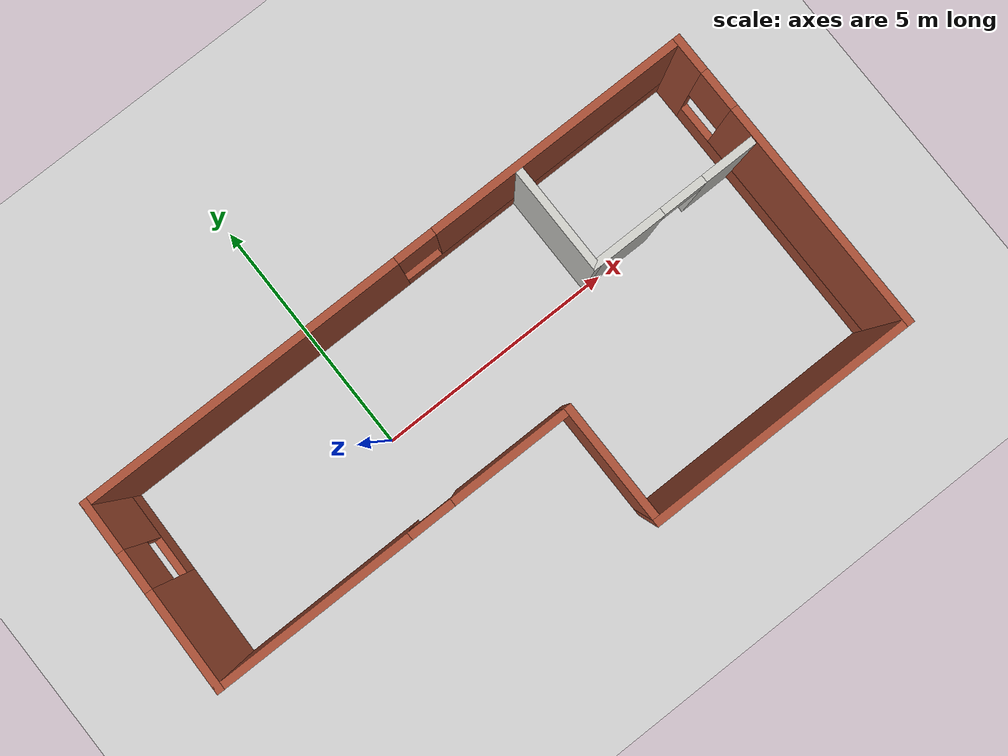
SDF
<sdf version='1.7'>
  <world name='default'>
    <light name='sun' type='directional'>
      <cast_shadows>1</cast_shadows>
      <pose>0 0 10 0 -0 0</pose>
      <diffuse>0.8 0.8 0.8 1</diffuse>
      <specular>0.2 0.2 0.2 1</specular>
      <attenuation>
        <range>1000</range>
        <constant>0.9</constant>
        <linear>0.01</linear>
        <quadratic>0.001</quadratic>
      </attenuation>
      <direction>-0.5 0.1 -0.9</direction>
      <spot>
        <inner_angle>0</inner_angle>
        <outer_angle>0</outer_angle>
        <falloff>0</falloff>
      </spot>
    </light>
    <model name='ground_plane'>
      <static>1</static>
      <link name='link'>
        <collision name='collision'>
          <geometry>
            <plane>
              <normal>0 0 1</normal>
              <size>100 100</size>
            </plane>
          </geometry>
          <surface>
            <contact>
              <collide_bitmask>65535</collide_bitmask>
              <ode/>
            </contact>
            <friction>
              <ode>
                <mu>100</mu>
                <mu2>50</mu2>
              </ode>
              <torsional>
                <ode/>
              </torsional>
            </friction>
            <bounce/>
          </surface>
          <max_contacts>10</max_contacts>
        </collision>
        <visual name='visual'>
          <cast_shadows>0</cast_shadows>
          <geometry>
            <plane>
              <normal>0 0 1</normal>
              <size>100 100</size>
            </plane>
          </geometry>
          <material>
            <script>
              <uri>file://media/materials/scripts/gazebo.material</uri>
              <name>Gazebo/Grey</name>
            </script>
          </material>
        </visual>
        <self_collide>0</self_collide>
        <enable_wind>0</enable_wind>
        <kinematic>0</kinematic>
      </link>
    </model>
    <gravity>0 0 -9.8</gravity>
    <magnetic_field>6e-06 2.3e-05 -4.2e-05</magnetic_field>
    <atmosphere type='adiabatic'/>
    <physics type='ode'>
      <max_step_size>0.001</max_step_size>
      <real_time_factor>1</real_time_factor>
      <real_time_update_rate>1000</real_time_update_rate>
    </physics>
    <scene>
      <ambient>0.4 0.4 0.4 1</ambient>
      <background>0.7 0.7 0.7 1</background>
      <shadows>0</shadows>
    </scene>
    <wind/>
    <spherical_coordinates>
      <surface_model>EARTH_WGS84</surface_model>
      <latitude_deg>0</latitude_deg>
      <longitude_deg>0</longitude_deg>
      <elevation>0</elevation>
      <heading_deg>0</heading_deg>
    </spherical_coordinates>
    <model name='world'>
      <pose>1.84735 -0.85774 0 0 -0 0</pose>
      <link name='Wall_10'>
        <pose>4.51631 0.925883 0 0 -0 0</pose>
        <visual name='Wall_10_Visual_0'>
          <pose>-0.989145 0 1.25 0 -0 0</pose>
          <geometry>
            <box>
              <size>1.52171 0.15 2.5</size>
            </box>
          </geometry>
          <material>
            <script>
              <uri>file://media/materials/scripts/gazebo.material</uri>
              <name>Gazebo/CeilingTiled</name>
            </script>
            <ambient>1 1 1 1</ambient>
          </material>
          <meta>
            <layer>0</layer>
          </meta>
        </visual>
        <collision name='Wall_10_Collision_0'>
          <geometry>
            <box>
              <size>1.52171 0.15 2.5</size>
            </box>
          </geometry>
          <pose>-0.989145 0 1.25 0 -0 0</pose>
          <max_contacts>10</max_contacts>
          <surface>
            <contact>
              <ode/>
            </contact>
            <bounce/>
            <friction>
              <torsional>
                <ode/>
              </torsional>
              <ode/>
            </friction>
          </surface>
        </collision>
        <visual name='Wall_10_Visual_1'>
          <pose>1.21086 0 1.25 0 -0 0</pose>
          <geometry>
            <box>
              <size>1.07829 0.15 2.5</size>
            </box>
          </geometry>
          <material>
            <script>
              <uri>file://media/materials/scripts/gazebo.material</uri>
              <name>Gazebo/CeilingTiled</name>
            </script>
            <ambient>1 1 1 1</ambient>
          </material>
          <meta>
            <layer>0</layer>
          </meta>
        </visual>
        <collision name='Wall_10_Collision_1'>
          <geometry>
            <box>
              <size>1.07829 0.15 2.5</size>
            </box>
          </geometry>
          <pose>1.21086 0 1.25 0 -0 0</pose>
          <max_contacts>10</max_contacts>
          <surface>
            <contact>
              <ode/>
            </contact>
            <bounce/>
            <friction>
              <torsional>
                <ode/>
              </torsional>
              <ode/>
            </friction>
          </surface>
        </collision>
        <visual name='Wall_10_Visual_2'>
          <pose>0.22171 0 2.25 0 -0 0</pose>
          <geometry>
            <box>
              <size>0.9 0.15 0.5</size>
            </box>
          </geometry>
          <material>
            <script>
              <uri>file://media/materials/scripts/gazebo.material</uri>
              <name>Gazebo/CeilingTiled</name>
            </script>
            <ambient>1 1 1 1</ambient>
          </material>
          <meta>
            <layer>0</layer>
          </meta>
        </visual>
        <collision name='Wall_10_Collision_2'>
          <geometry>
            <box>
              <size>0.9 0.15 0.5</size>
            </box>
          </geometry>
          <pose>0.22171 0 2.25 0 -0 0</pose>
          <max_contacts>10</max_contacts>
          <surface>
            <contact>
              <ode/>
            </contact>
            <bounce/>
            <friction>
              <torsional>
                <ode/>
              </torsional>
              <ode/>
            </friction>
          </surface>
        </collision>
        <self_collide>0</self_collide>
        <enable_wind>0</enable_wind>
        <kinematic>0</kinematic>
      </link>
      <link name='Wall_2'>
        <pose>0.050987 3.04901 0 0 -0 0</pose>
        <visual name='Wall_2_Visual_0'>
          <pose>-3.07947 0 1.25 0 -0 0</pose>
          <geometry>
            <box>
              <size>6.59105 0.15 2.5</size>
            </box>
          </geometry>
          <material>
            <script>
              <uri>file://media/materials/scripts/gazebo.material</uri>
              <name>Gazebo/Bricks</name>
            </script>
            <ambient>1 1 1 1</ambient>
          </material>
          <meta>
            <layer>0</layer>
          </meta>
        </visual>
        <collision name='Wall_2_Collision_0'>
          <geometry>
            <box>
              <size>6.59105 0.15 2.5</size>
            </box>
          </geometry>
          <pose>-3.07947 0 1.25 0 -0 0</pose>
          <max_contacts>10</max_contacts>
          <surface>
            <contact>
              <ode/>
            </contact>
            <bounce/>
            <friction>
              <torsional>
                <ode/>
              </torsional>
              <ode/>
            </friction>
          </surface>
        </collision>
        <visual name='Wall_2_Visual_1'>
          <pose>3.29553 0 0.25 0 -0 0</pose>
          <geometry>
            <box>
              <size>6.15895 0.15 0.5</size>
            </box>
          </geometry>
          <material>
            <script>
              <uri>file://media/materials/scripts/gazebo.material</uri>
              <name>Gazebo/Bricks</name>
            </script>
            <ambient>1 1 1 1</ambient>
          </material>
          <meta>
            <layer>0</layer>
          </meta>
        </visual>
        <collision name='Wall_2_Collision_1'>
          <geometry>
            <box>
              <size>6.15895 0.15 0.5</size>
            </box>
          </geometry>
          <pose>3.29553 0 0.25 0 -0 0</pose>
          <max_contacts>10</max_contacts>
          <surface>
            <contact>
              <ode/>
            </contact>
            <bounce/>
            <friction>
              <torsional>
                <ode/>
              </torsional>
              <ode/>
            </friction>
          </surface>
        </collision>
        <visual name='Wall_2_Visual_2'>
          <pose>3.69553 0 1.5 0 -0 0</pose>
          <geometry>
            <box>
              <size>5.35895 0.15 2</size>
            </box>
          </geometry>
          <material>
            <script>
              <uri>file://media/materials/scripts/gazebo.material</uri>
              <name>Gazebo/Bricks</name>
            </script>
            <ambient>1 1 1 1</ambient>
          </material>
          <meta>
            <layer>0</layer>
          </meta>
        </visual>
        <collision name='Wall_2_Collision_2'>
          <geometry>
            <box>
              <size>5.35895 0.15 2</size>
            </box>
          </geometry>
          <pose>3.69553 0 1.5 0 -0 0</pose>
          <max_contacts>10</max_contacts>
          <surface>
            <contact>
              <ode/>
            </contact>
            <bounce/>
            <friction>
              <torsional>
                <ode/>
              </torsional>
              <ode/>
            </friction>
          </surface>
        </collision>
        <visual name='Wall_2_Visual_3'>
          <pose>0.616052 0 1.9 0 -0 0</pose>
          <geometry>
            <box>
              <size>0.8 0.15 1.2</size>
            </box>
          </geometry>
          <material>
            <script>
              <uri>file://media/materials/scripts/gazebo.material</uri>
              <name>Gazebo/Bricks</name>
            </script>
            <ambient>1 1 1 1</ambient>
          </material>
          <meta>
            <layer>0</layer>
          </meta>
        </visual>
        <collision name='Wall_2_Collision_3'>
          <geometry>
            <box>
              <size>0.8 0.15 1.2</size>
            </box>
          </geometry>
          <pose>0.616052 0 1.9 0 -0 0</pose>
          <max_contacts>10</max_contacts>
          <surface>
            <contact>
              <ode/>
            </contact>
            <bounce/>
            <friction>
              <torsional>
                <ode/>
              </torsional>
              <ode/>
            </friction>
          </surface>
        </collision>
        <self_collide>0</self_collide>
        <enable_wind>0</enable_wind>
        <kinematic>0</kinematic>
      </link>
      <link name='Wall_3'>
        <pose>6.35099 -0.000986 0 0 -0 -1.5708</pose>
        <visual name='Wall_3_Visual_0'>
          <pose>-2.74393 0 1.25 0 -0 0</pose>
          <geometry>
            <box>
              <size>0.762139 0.15 2.5</size>
            </box>
          </geometry>
          <material>
            <script>
              <uri>file://media/materials/scripts/gazebo.material</uri>
              <name>Gazebo/Bricks</name>
            </script>
            <ambient>1 1 1 1</ambient>
          </material>
          <meta>
            <layer>0</layer>
          </meta>
        </visual>
        <collision name='Wall_3_Collision_0'>
          <geometry>
            <box>
              <size>0.762139 0.15 2.5</size>
            </box>
          </geometry>
          <pose>-2.74393 0 1.25 0 -0 0</pose>
          <max_contacts>10</max_contacts>
          <surface>
            <contact>
              <ode/>
            </contact>
            <bounce/>
            <friction>
              <torsional>
                <ode/>
              </torsional>
              <ode/>
            </friction>
          </surface>
        </collision>
        <visual name='Wall_3_Visual_1'>
          <pose>0.381069 0 0.25 0 -0 0</pose>
          <geometry>
            <box>
              <size>5.48786 0.15 0.5</size>
            </box>
          </geometry>
          <material>
            <script>
              <uri>file://media/materials/scripts/gazebo.material</uri>
              <name>Gazebo/Bricks</name>
            </script>
            <ambient>1 1 1 1</ambient>
          </material>
          <meta>
            <layer>0</layer>
          </meta>
        </visual>
        <collision name='Wall_3_Collision_1'>
          <geometry>
            <box>
              <size>5.48786 0.15 0.5</size>
            </box>
          </geometry>
          <pose>0.381069 0 0.25 0 -0 0</pose>
          <max_contacts>10</max_contacts>
          <surface>
            <contact>
              <ode/>
            </contact>
            <bounce/>
            <friction>
              <torsional>
                <ode/>
              </torsional>
              <ode/>
            </friction>
          </surface>
        </collision>
        <visual name='Wall_3_Visual_2'>
          <pose>0.781069 0 1.5 0 -0 0</pose>
          <geometry>
            <box>
              <size>4.68786 0.15 2</size>
            </box>
          </geometry>
          <material>
            <script>
              <uri>file://media/materials/scripts/gazebo.material</uri>
              <name>Gazebo/Bricks</name>
            </script>
            <ambient>1 1 1 1</ambient>
          </material>
          <meta>
            <layer>0</layer>
          </meta>
        </visual>
        <collision name='Wall_3_Collision_2'>
          <geometry>
            <box>
              <size>4.68786 0.15 2</size>
            </box>
          </geometry>
          <pose>0.781069 0 1.5 0 -0 0</pose>
          <max_contacts>10</max_contacts>
          <surface>
            <contact>
              <ode/>
            </contact>
            <bounce/>
            <friction>
              <torsional>
                <ode/>
              </torsional>
              <ode/>
            </friction>
          </surface>
        </collision>
        <visual name='Wall_3_Visual_3'>
          <pose>-1.96286 0 1.9 0 -0 0</pose>
          <geometry>
            <box>
              <size>0.8 0.15 1.2</size>
            </box>
          </geometry>
          <material>
            <script>
              <uri>file://media/materials/scripts/gazebo.material</uri>
              <name>Gazebo/Bricks</name>
            </script>
            <ambient>1 1 1 1</ambient>
          </material>
          <meta>
            <layer>0</layer>
          </meta>
        </visual>
        <collision name='Wall_3_Collision_3'>
          <geometry>
            <box>
              <size>0.8 0.15 1.2</size>
            </box>
          </geometry>
          <pose>-1.96286 0 1.9 0 -0 0</pose>
          <max_contacts>10</max_contacts>
          <surface>
            <contact>
              <ode/>
            </contact>
            <bounce/>
            <friction>
              <torsional>
                <ode/>
              </torsional>
              <ode/>
            </friction>
          </surface>
        </collision>
        <self_collide>0</self_collide>
        <enable_wind>0</enable_wind>
        <kinematic>0</kinematic>
      </link>
      <link name='Wall_4'>
        <collision name='Wall_4_Collision'>
          <geometry>
            <box>
              <size>5.5 0.15 2.5</size>
            </box>
          </geometry>
          <pose>0 0 1.25 0 -0 0</pose>
          <max_contacts>10</max_contacts>
          <surface>
            <contact>
              <ode/>
            </contact>
            <bounce/>
            <friction>
              <torsional>
                <ode/>
              </torsional>
              <ode/>
            </friction>
          </surface>
        </collision>
        <visual name='Wall_4_Visual'>
          <pose>0 0 1.25 0 -0 0</pose>
          <geometry>
            <box>
              <size>5.5 0.15 2.5</size>
            </box>
          </geometry>
          <material>
            <script>
              <uri>file://media/materials/scripts/gazebo.material</uri>
              <name>Gazebo/Bricks</name>
            </script>
            <ambient>1 1 1 1</ambient>
          </material>
          <meta>
            <layer>0</layer>
          </meta>
        </visual>
        <pose>3.67599 -3.05099 0 0 -0 3.14159</pose>
        <self_collide>0</self_collide>
        <enable_wind>0</enable_wind>
        <kinematic>0</kinematic>
      </link>
      <link name='Wall_5'>
        <collision name='Wall_5_Collision'>
          <geometry>
            <box>
              <size>2.5 0.15 2.5</size>
            </box>
          </geometry>
          <pose>0 0 1.25 0 -0 0</pose>
          <max_contacts>10</max_contacts>
          <surface>
            <contact>
              <ode/>
            </contact>
            <bounce/>
            <friction>
              <torsional>
                <ode/>
              </torsional>
              <ode/>
            </friction>
          </surface>
        </collision>
        <visual name='Wall_5_Visual'>
          <pose>0 0 1.25 0 -0 0</pose>
          <geometry>
            <box>
              <size>2.5 0.15 2.5</size>
            </box>
          </geometry>
          <material>
            <script>
              <uri>file://media/materials/scripts/gazebo.material</uri>
              <name>Gazebo/Bricks</name>
            </script>
            <ambient>1 1 1 1</ambient>
          </material>
          <meta>
            <layer>0</layer>
          </meta>
        </visual>
        <pose>1.00099 -1.87599 0 0 -0 1.5708</pose>
        <self_collide>0</self_collide>
        <enable_wind>0</enable_wind>
        <kinematic>0</kinematic>
      </link>
      <link name='Wall_6'>
        <pose>-2.67401 -0.700986 0 0 -0 3.14159</pose>
        <visual name='Wall_6_Visual_0'>
          <pose>-2.47521 0 1.25 0 -0 0</pose>
          <geometry>
            <box>
              <size>2.54958 0.15 2.5</size>
            </box>
          </geometry>
          <material>
            <script>
              <uri>file://media/materials/scripts/gazebo.material</uri>
              <name>Gazebo/Bricks</name>
            </script>
            <ambient>1 1 1 1</ambient>
          </material>
          <meta>
            <layer>0</layer>
          </meta>
        </visual>
        <collision name='Wall_6_Collision_0'>
          <geometry>
            <box>
              <size>2.54958 0.15 2.5</size>
            </box>
          </geometry>
          <pose>-2.47521 0 1.25 0 -0 0</pose>
          <max_contacts>10</max_contacts>
          <surface>
            <contact>
              <ode/>
            </contact>
            <bounce/>
            <friction>
              <torsional>
                <ode/>
              </torsional>
              <ode/>
            </friction>
          </surface>
        </collision>
        <visual name='Wall_6_Visual_1'>
          <pose>1.72479 0 1.25 0 -0 0</pose>
          <geometry>
            <box>
              <size>4.05042 0.15 2.5</size>
            </box>
          </geometry>
          <material>
            <script>
              <uri>file://media/materials/scripts/gazebo.material</uri>
              <name>Gazebo/Bricks</name>
            </script>
            <ambient>1 1 1 1</ambient>
          </material>
          <meta>
            <layer>0</layer>
          </meta>
        </visual>
        <collision name='Wall_6_Collision_1'>
          <geometry>
            <box>
              <size>4.05042 0.15 2.5</size>
            </box>
          </geometry>
          <pose>1.72479 0 1.25 0 -0 0</pose>
          <max_contacts>10</max_contacts>
          <surface>
            <contact>
              <ode/>
            </contact>
            <bounce/>
            <friction>
              <torsional>
                <ode/>
              </torsional>
              <ode/>
            </friction>
          </surface>
        </collision>
        <visual name='Wall_6_Visual_2'>
          <pose>-0.750423 0 2.25 0 -0 0</pose>
          <geometry>
            <box>
              <size>0.9 0.15 0.5</size>
            </box>
          </geometry>
          <material>
            <script>
              <uri>file://media/materials/scripts/gazebo.material</uri>
              <name>Gazebo/Bricks</name>
            </script>
            <ambient>1 1 1 1</ambient>
          </material>
          <meta>
            <layer>0</layer>
          </meta>
        </visual>
        <collision name='Wall_6_Collision_2'>
          <geometry>
            <box>
              <size>0.9 0.15 0.5</size>
            </box>
          </geometry>
          <pose>-0.750423 0 2.25 0 -0 0</pose>
          <max_contacts>10</max_contacts>
          <surface>
            <contact>
              <ode/>
            </contact>
            <bounce/>
            <friction>
              <torsional>
                <ode/>
              </torsional>
              <ode/>
            </friction>
          </surface>
        </collision>
        <self_collide>0</self_collide>
        <enable_wind>0</enable_wind>
        <kinematic>0</kinematic>
      </link>
      <link name='Wall_7'>
        <pose>-6.29901 1.17401 0 0 -0 1.54414</pose>
        <visual name='Wall_7_Visual_0'>
          <pose>-0.931788 0 1.25 0 -0 0</pose>
          <geometry>
            <box>
              <size>2.03776 0.15 2.5</size>
            </box>
          </geometry>
          <material>
            <script>
              <uri>file://media/materials/scripts/gazebo.material</uri>
              <name>Gazebo/Bricks</name>
            </script>
            <ambient>1 1 1 1</ambient>
          </material>
          <meta>
            <layer>0</layer>
          </meta>
        </visual>
        <collision name='Wall_7_Collision_0'>
          <geometry>
            <box>
              <size>2.03776 0.15 2.5</size>
            </box>
          </geometry>
          <pose>-0.931788 0 1.25 0 -0 0</pose>
          <max_contacts>10</max_contacts>
          <surface>
            <contact>
              <ode/>
            </contact>
            <bounce/>
            <friction>
              <torsional>
                <ode/>
              </torsional>
              <ode/>
            </friction>
          </surface>
        </collision>
        <visual name='Wall_7_Visual_1'>
          <pose>1.01888 0 0.25 0 -0 0</pose>
          <geometry>
            <box>
              <size>1.86358 0.15 0.5</size>
            </box>
          </geometry>
          <material>
            <script>
              <uri>file://media/materials/scripts/gazebo.material</uri>
              <name>Gazebo/Bricks</name>
            </script>
            <ambient>1 1 1 1</ambient>
          </material>
          <meta>
            <layer>0</layer>
          </meta>
        </visual>
        <collision name='Wall_7_Collision_1'>
          <geometry>
            <box>
              <size>1.86358 0.15 0.5</size>
            </box>
          </geometry>
          <pose>1.01888 0 0.25 0 -0 0</pose>
          <max_contacts>10</max_contacts>
          <surface>
            <contact>
              <ode/>
            </contact>
            <bounce/>
            <friction>
              <torsional>
                <ode/>
              </torsional>
              <ode/>
            </friction>
          </surface>
        </collision>
        <visual name='Wall_7_Visual_2'>
          <pose>1.41888 0 1.5 0 -0 0</pose>
          <geometry>
            <box>
              <size>1.06358 0.15 2</size>
            </box>
          </geometry>
          <material>
            <script>
              <uri>file://media/materials/scripts/gazebo.material</uri>
              <name>Gazebo/Bricks</name>
            </script>
            <ambient>1 1 1 1</ambient>
          </material>
          <meta>
            <layer>0</layer>
          </meta>
        </visual>
        <collision name='Wall_7_Collision_2'>
          <geometry>
            <box>
              <size>1.06358 0.15 2</size>
            </box>
          </geometry>
          <pose>1.41888 0 1.5 0 -0 0</pose>
          <max_contacts>10</max_contacts>
          <surface>
            <contact>
              <ode/>
            </contact>
            <bounce/>
            <friction>
              <torsional>
                <ode/>
              </torsional>
              <ode/>
            </friction>
          </surface>
        </collision>
        <visual name='Wall_7_Visual_3'>
          <pose>0.48709 0 1.9 0 -0 0</pose>
          <geometry>
            <box>
              <size>0.8 0.15 1.2</size>
            </box>
          </geometry>
          <material>
            <script>
              <uri>file://media/materials/scripts/gazebo.material</uri>
              <name>Gazebo/Bricks</name>
            </script>
            <ambient>1 1 1 1</ambient>
          </material>
          <meta>
            <layer>0</layer>
          </meta>
        </visual>
        <collision name='Wall_7_Collision_3'>
          <geometry>
            <box>
              <size>0.8 0.15 1.2</size>
            </box>
          </geometry>
          <pose>0.48709 0 1.9 0 -0 0</pose>
          <max_contacts>10</max_contacts>
          <surface>
            <contact>
              <ode/>
            </contact>
            <bounce/>
            <friction>
              <torsional>
                <ode/>
              </torsional>
              <ode/>
            </friction>
          </surface>
        </collision>
        <self_collide>0</self_collide>
        <enable_wind>0</enable_wind>
        <kinematic>0</kinematic>
      </link>
      <link name='Wall_9'>
        <collision name='Wall_9_Collision'>
          <geometry>
            <box>
              <size>2.25 0.15 2.5</size>
            </box>
          </geometry>
          <pose>0 0 1.25 0 -0 0</pose>
          <max_contacts>10</max_contacts>
          <surface>
            <contact>
              <ode/>
            </contact>
            <bounce/>
            <friction>
              <torsional>
                <ode/>
              </torsional>
              <ode/>
            </friction>
          </surface>
        </collision>
        <visual name='Wall_9_Visual'>
          <pose>0 0 1.25 0 -0 0</pose>
          <geometry>
            <box>
              <size>2.25 0.15 2.5</size>
            </box>
          </geometry>
          <material>
            <script>
              <uri>file://media/materials/scripts/gazebo.material</uri>
              <name>Gazebo/CeilingTiled</name>
            </script>
            <ambient>1 1 1 1</ambient>
          </material>
          <meta>
            <layer>0</layer>
          </meta>
        </visual>
        <pose>2.84131 1.97588 0 0 -0 -1.5708</pose>
        <self_collide>0</self_collide>
        <enable_wind>0</enable_wind>
        <kinematic>0</kinematic>
      </link>
      <static>1</static>
    </model>

    <gui fullscreen='0'>
      <camera name='user_camera'>
        <pose>10.6574 -11.1415 19.5854 -0 0.961798 2.11221</pose>
        <view_controller>orbit</view_controller>
        <projection_type>perspective</projection_type>
      </camera>
    </gui>
  </world>
</sdf>
